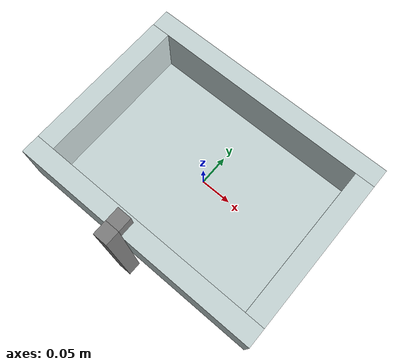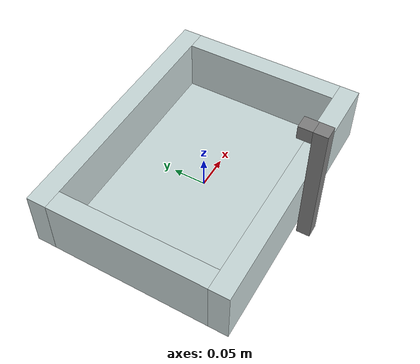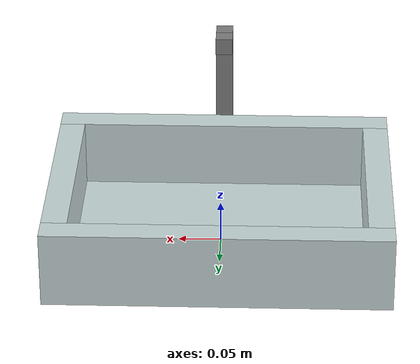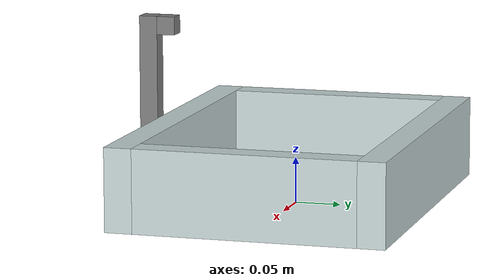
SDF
<?xml version='1.0'?>
<sdf version='1.7'>
  <model name='sink'>
    <link name='base_link'>
      <inertial>
        <mass>1</mass>
        <inertia>
          <ixx>0.166667</ixx>
          <ixy>0</ixy>
          <ixz>0</ixz>
          <iyy>0.166667</iyy>
          <iyz>0</iyz>
          <izz>0.166667</izz>
        </inertia>
        <pose>0 0 0 0 -0 0</pose>
      </inertial>
      <pose>0 0 0 0 -0 0</pose>
      <visual name='visual'>
        <pose>0 0 0.005 0 -0 0</pose>
        <geometry>
            <box>
                <size>0.34 0.24 0.01</size>
            </box>
        </geometry>
        <material>
          <diffuse>0.788 0.850 0.850 1</diffuse>
        </material>
      </visual>
      <collision name='collision'>
        <pose>0 0 0.005 0 -0 0</pose>
        <geometry>
          <box>
              <size>0.34 0.24 0.01</size>
          </box>
        </geometry>
      </collision>
    </link>
    <link name='back_wall'>
      <inertial>
        <mass>1</mass>
        <inertia>
          <ixx>0.166667</ixx>
          <ixy>0</ixy>
          <ixz>0</ixz>
          <iyy>0.166667</iyy>
          <iyz>0</iyz>
          <izz>0.166667</izz>
        </inertia>
        <pose>0 0 0 0 -0 0</pose>
      </inertial>
      <pose>0 0.135 0.045 0 -0 0</pose>
      <visual name='visual'>
        <pose>0 0 0 0 -0 0</pose>
        <geometry>
            <box>
                <size>0.4 0.03 0.09</size>
            </box>
        </geometry>
        <material>
          <diffuse>0.788 0.850 0.850 1</diffuse>
        </material>
      </visual>
      <collision name='collision'>
        <pose>0 0 0 0 -0 0</pose>
        <geometry>
          <box>
              <size>0.4 0.03 0.09</size>
          </box>
        </geometry>
      </collision>
    </link>
    <joint name='joint1' type='fixed'>
      <parent>base_link</parent>
      <child>back_wall</child>
      <pose>0 0 0 0 -0 0</pose>
    </joint>
    <link name='front_wall'>
      <inertial>
        <mass>1</mass>
        <inertia>
          <ixx>0.166667</ixx>
          <ixy>0</ixy>
          <ixz>0</ixz>
          <iyy>0.166667</iyy>
          <iyz>0</iyz>
          <izz>0.166667</izz>
        </inertia>
        <pose>0 0 0 0 -0 0</pose>
      </inertial>
      <pose>0 -0.135 0.045 0 -0 0</pose>
      <visual name='visual'>
        <pose>0 0 0 0 -0 0</pose>
        <geometry>
            <box>
                <size>0.4 0.03 0.09</size>
            </box>
        </geometry>
        <material>
          <diffuse>0.788 0.850 0.850 1</diffuse>
        </material>
      </visual>
      <collision name='collision'>
        <pose>0 0 0 0 -0 0</pose>
        <geometry>
          <box>
              <size>0.4 0.03 0.09</size>
          </box>
        </geometry>
      </collision>
    </link>
    <joint name='joint2' type='fixed'>
      <parent>base_link</parent>
      <child>front_wall</child>
      <pose>0 0 0 0 -0 0</pose>
    </joint>
    <link name='left_wall'>
      <inertial>
        <mass>1</mass>
        <inertia>
          <ixx>0.166667</ixx>
          <ixy>0</ixy>
          <ixz>0</ixz>
          <iyy>0.166667</iyy>
          <iyz>0</iyz>
          <izz>0.166667</izz>
        </inertia>
        <pose>0 0 0 0 -0 0</pose>
      </inertial>
      <pose>0.185 0 0.045 0 -0 0</pose>
      <visual name='visual'>
        <pose>0 0 0 0 -0 0</pose>
        <geometry>
            <box>
                <size>0.03 0.24 0.09</size>
            </box>
        </geometry>
        <material>
          <diffuse>0.788 0.850 0.850 1</diffuse>
        </material>
      </visual>
      <collision name='collision'>
        <pose>0 0 0 0 -0 0</pose>
        <geometry>
          <box>
              <size>0.03 0.24 0.09</size>
          </box>
        </geometry>
      </collision>
    </link>
    <joint name='joint3' type='fixed'>
      <parent>base_link</parent>
      <child>left_wall</child>
      <pose>0 0 0 0 -0 0</pose>
    </joint>
    <link name='right_wall'>
      <inertial>
        <mass>1</mass>
        <inertia>
          <ixx>0.166667</ixx>
          <ixy>0</ixy>
          <ixz>0</ixz>
          <iyy>0.166667</iyy>
          <iyz>0</iyz>
          <izz>0.166667</izz>
        </inertia>
        <pose>0 0 0 0 -0 0</pose>
      </inertial>
      <pose>-0.185 0 0.045 0 -0 0</pose>
      <visual name='visual'>
        <pose>0 0 0 0 -0 0</pose>
        <geometry>
            <box>
                <size>0.03 0.24 0.09</size>
            </box>
        </geometry>
        <material>
          <diffuse>0.788 0.850 0.850 1</diffuse>
        </material>
      </visual>
      <collision name='collision'>
        <pose>0 0 0 0 -0 0</pose>
        <geometry>
          <box>
              <size>0.03 0.24 0.09</size>
          </box>
        </geometry>
      </collision>
    </link>
    <joint name='joint4' type='fixed'>
      <parent>base_link</parent>
      <child>right_wall</child>
      <pose>0 0 0 0 -0 0</pose>
    </joint>
    <link name='pipe'>
      <inertial>
        <mass>1</mass>
        <inertia>
          <ixx>0.166667</ixx>
          <ixy>0</ixy>
          <ixz>0</ixz>
          <iyy>0.166667</iyy>
          <iyz>0</iyz>
          <izz>0.166667</izz>
        </inertia>
        <pose>0 0 0 0 -0 0</pose>
      </inertial>
      <pose>0 -0.165 0.1 0 -0 0</pose>
      <visual name='visual'>
        <pose>0 0 0 0 -0 0</pose>
        <geometry>
            <box>
                <size>0.02 0.02 0.2</size>
            </box>
        </geometry>
        <material>
          <diffuse>0.5 0.5 0.5 1</diffuse>
        </material>
      </visual>
      <collision name='collision'>
        <pose>0 0 0 0 -0 0</pose>
        <geometry>
          <box>
              <size>0.02 0.02 0.2</size>
          </box>
        </geometry>
      </collision>
      <collision name='collision1'>
        <pose>0 0.02 0.09 0 -0 0</pose>
        <geometry>
          <box>
              <size>0.02 0.02 0.02</size>
          </box>
        </geometry>
      </collision>
      <visual name='visual1'>
        <pose>0 0.02 0.09 0 -0 0</pose>
        <geometry>
            <box>
                <size>0.02 0.02 0.02</size>
            </box>
        </geometry>
        <material>
          <diffuse>0.5 0.5 0.5 1</diffuse>
        </material>
      </visual>
    </link>
    <joint name='joint5' type='fixed'>
      <parent>base_link</parent>
      <child>pipe</child>
      <pose>0 0 0 0 -0 0</pose>
    </joint>
  </model>
</sdf>
